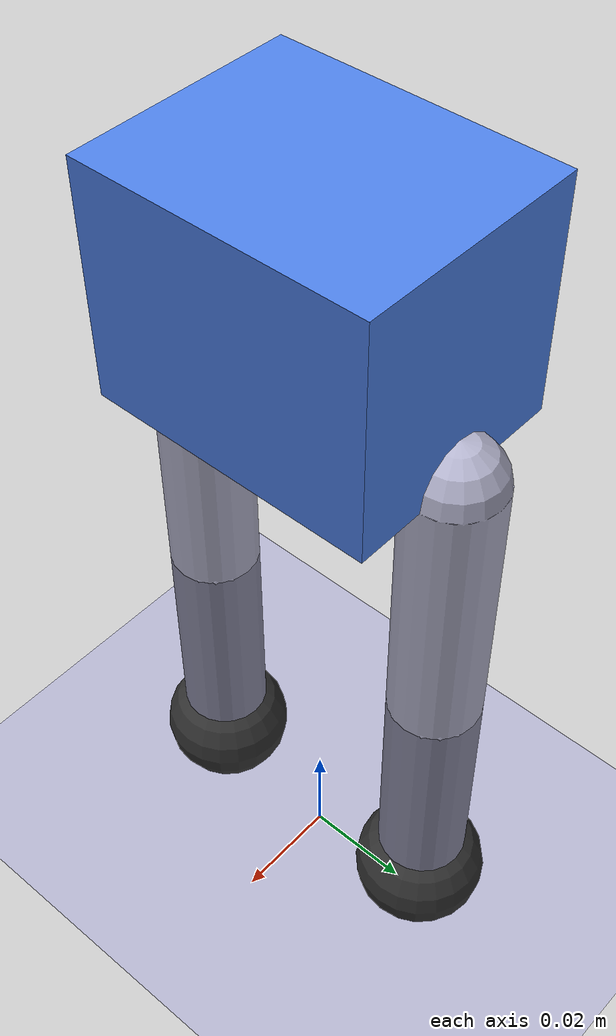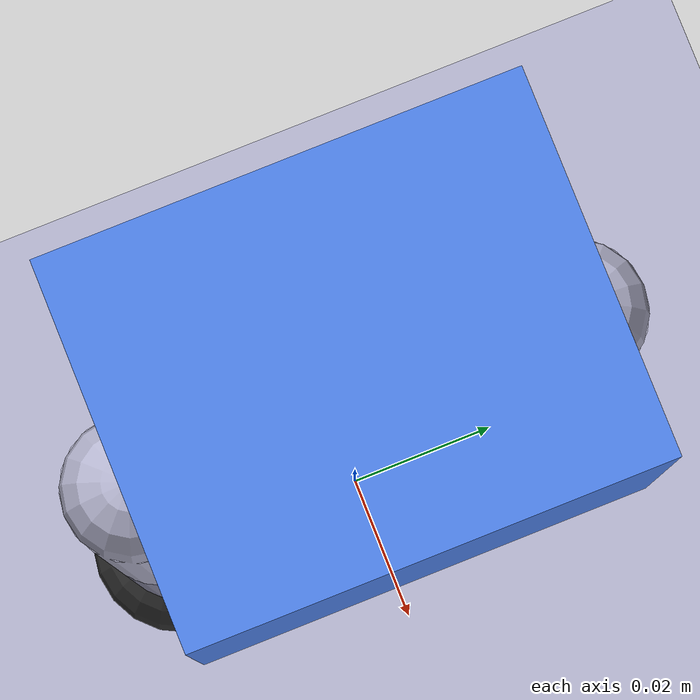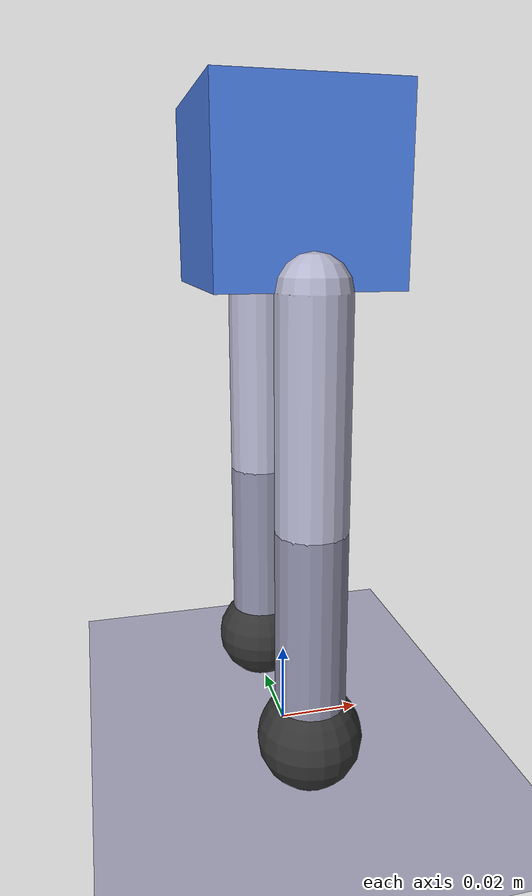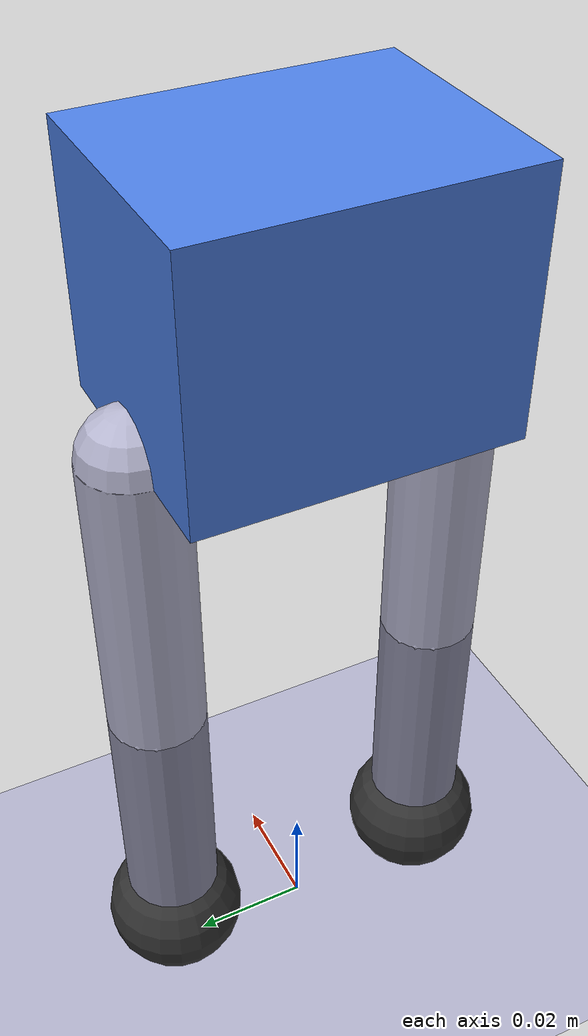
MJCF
<mujoco model="slip_biped_3d">

  <compiler angle="radian" autolimits="true"/>

  <option timestep="0.001" iterations="50" solver="Newton"/>

  <visual>
    <headlight diffuse="0.6 0.6 0.6" ambient="0.3 0.3 0.3" specular="0 0 0"/>
    <global azimuth="120" elevation="-20"/>
  </visual>

  <asset>
    <texture name="grid" type="2d" builtin="checker" width="512" height="512"
             rgb1="0.25 0.26 0.28" rgb2="0.32 0.33 0.35"/>
    <material name="grid" texture="grid" texrepeat="2 2" reflectance="0.1"/>
  </asset>

  <default>
    <joint armature="0.001" damping="0.02"/>
    <geom friction="0.8 0.1 0.1" rgba="0.7 0.7 0.8 1"/>
    <default class="leg">
      <geom type="capsule" size="0.008"/>
    </default>
    <default class="foot">
      <geom type="sphere" size="0.012" rgba="0.2 0.2 0.2 1" friction="1.0 0.1 0.1"/>
    </default>
    <default class="hip_act">
      <position kp="5" kv="0.1" ctrlrange="-1.57 1.57"
                forcelimited="true" forcerange="-0.5 0.5"/>
    </default>
  </default>

  <worldbody>
    <light pos="0 0 2" dir="0 0 -1" diffuse="0.8 0.8 0.8"/>
    <geom name="floor" type="plane" size="0 0 0.05" material="grid"/>

    <body name="torso" pos="0 0 0.132">
      <freejoint name="torso_freejoint"/>

      <geom name="torso_box" type="box" size="0.02 0.025 0.02" mass="0.65"
            rgba="0.3 0.5 0.9 1"/>
      <site name="imu" pos="0 0 0"/>

      <!-- ── Left leg ─────────────────────────────────────────────────── -->
      <body name="left_upper_leg" pos="0 0.025 -0.02">
        <!-- roll → pitch (humanoid convention).  Roll has a tighter range
             since legs aren't expected to abduct far in this toy. -->
        <joint name="left_hip_roll"  type="hinge" axis="1 0 0" range="-0.6 0.6"/>
        <joint name="left_hip_pitch" type="hinge" axis="0 1 0" range="-1.57 1.57"/>
        <geom class="leg" fromto="0 0 0   0 0 -0.05" mass="0.025"/>

        <body name="left_lower_leg" pos="0 0 -0.05">
          <joint name="left_spring" type="slide" axis="0 0 1"
                 range="0 0.03" stiffness="500" damping="0.2"
                 springref="0" armature="0"/>
          <geom class="leg" fromto="0 0 0   0 0 -0.05" mass="0.020"
                rgba="0.55 0.55 0.65 1"/>
          <geom class="foot" name="left_foot" pos="0 0 -0.05" mass="0.005"/>
        </body>
      </body>

      <!-- ── Right leg (mirror about XZ plane) ────────────────────────── -->
      <body name="right_upper_leg" pos="0 -0.025 -0.02">
        <joint name="right_hip_roll"  type="hinge" axis="1 0 0" range="-0.6 0.6"/>
        <joint name="right_hip_pitch" type="hinge" axis="0 1 0" range="-1.57 1.57"/>
        <geom class="leg" fromto="0 0 0   0 0 -0.05" mass="0.025"/>

        <body name="right_lower_leg" pos="0 0 -0.05">
          <joint name="right_spring" type="slide" axis="0 0 1"
                 range="0 0.03" stiffness="500" damping="0.2"
                 springref="0" armature="0"/>
          <geom class="leg" fromto="0 0 0   0 0 -0.05" mass="0.020"
                rgba="0.55 0.55 0.65 1"/>
          <geom class="foot" name="right_foot" pos="0 0 -0.05" mass="0.005"/>
        </body>
      </body>
    </body>
  </worldbody>

  <actuator>
    <position class="hip_act" name="left_hip_roll_act"   joint="left_hip_roll"/>
    <position class="hip_act" name="left_hip_pitch_act"  joint="left_hip_pitch"/>
    <position class="hip_act" name="right_hip_roll_act"  joint="right_hip_roll"/>
    <position class="hip_act" name="right_hip_pitch_act" joint="right_hip_pitch"/>
  </actuator>

  <sensor>
    <framepos    name="torso_pos"  objtype="body" objname="torso"/>
    <framequat   name="torso_quat" objtype="body" objname="torso"/>
    <framelinvel name="torso_lvel" objtype="body" objname="torso"/>
    <frameangvel name="torso_avel" objtype="body" objname="torso"/>
    <jointpos name="left_spring_compression"  joint="left_spring"/>
    <jointpos name="right_spring_compression" joint="right_spring"/>
  </sensor>
</mujoco>
